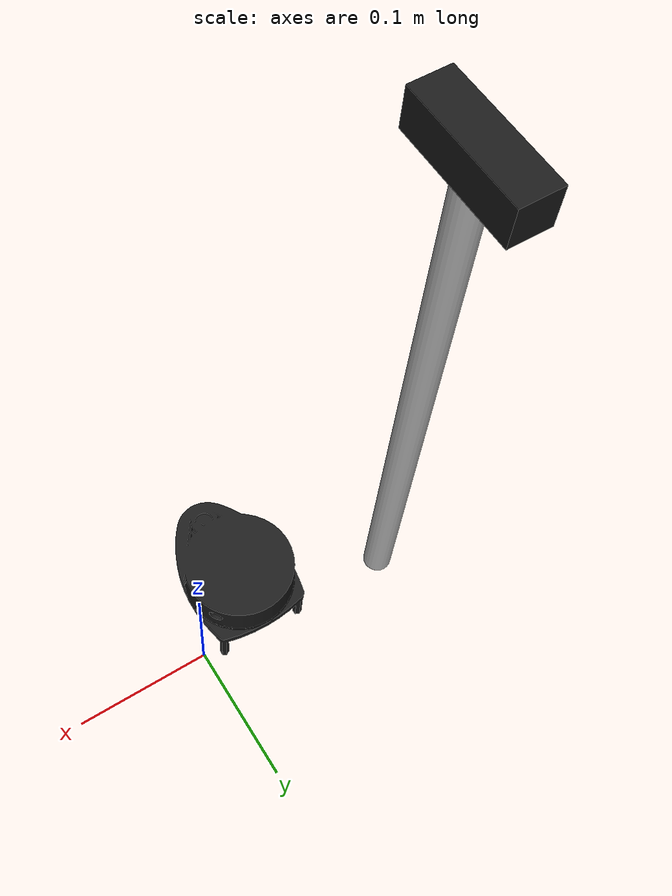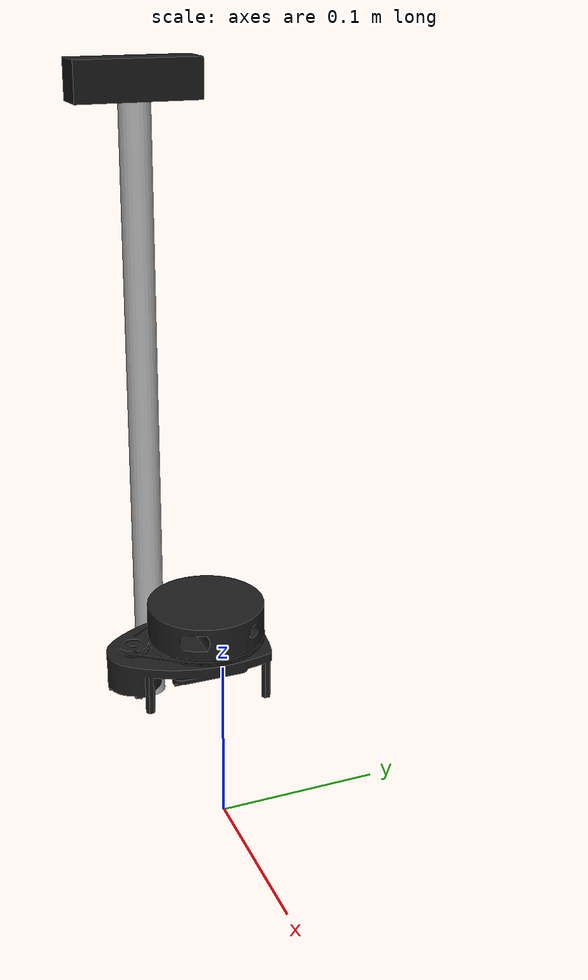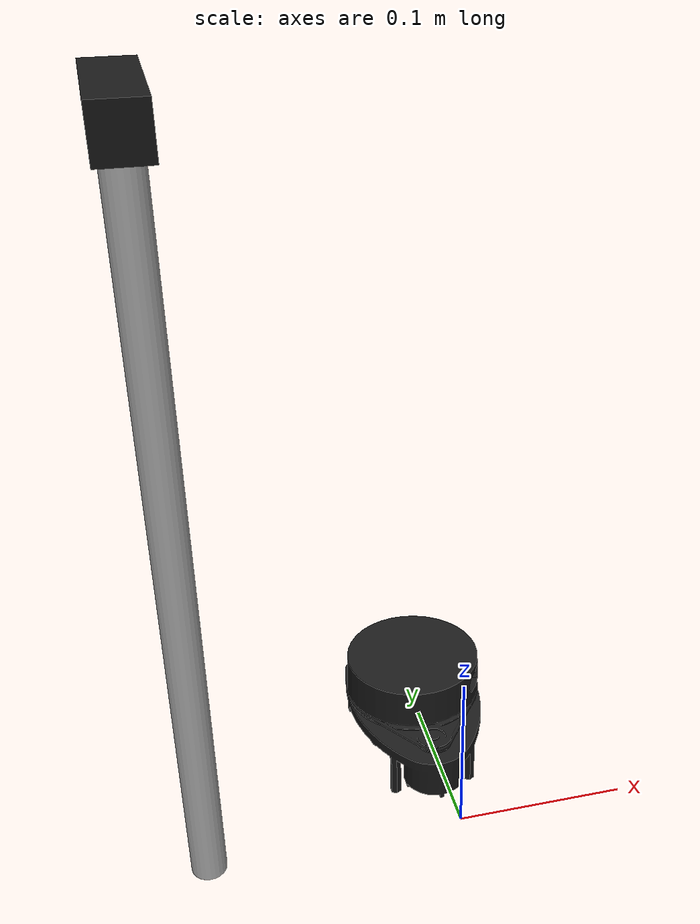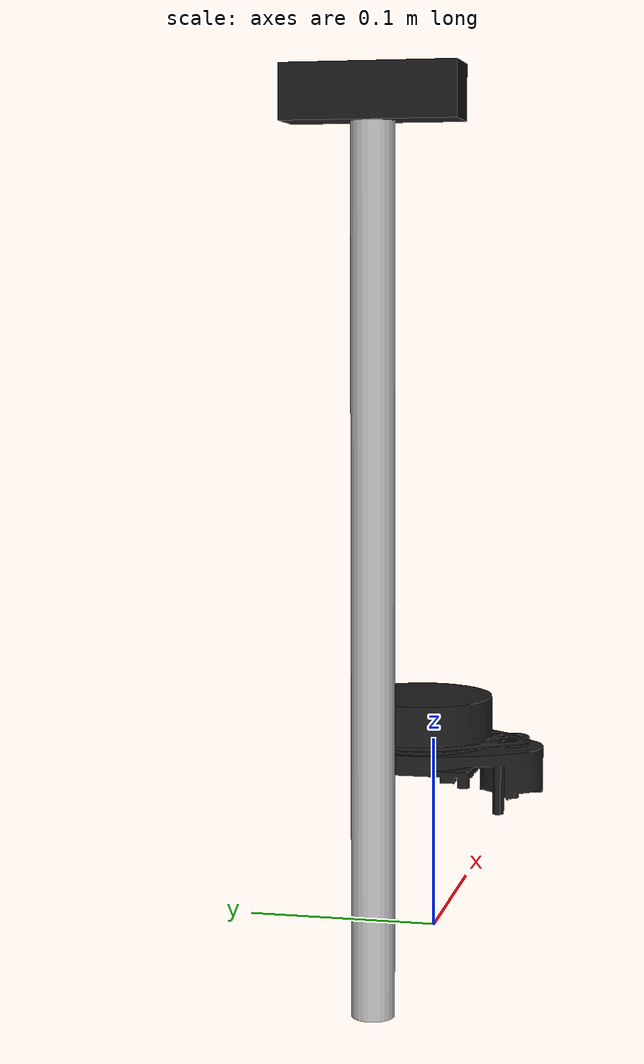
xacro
<?xml version="1.0"?>
<robot xmlns:xacro="http://ros.org/wiki/xacro" name="custom_extras">

  <!-- base_link is a placeholder; Create3's RSP also publishes it -->
  <link name="base_link"/>

  <!-- ===== RPLIDAR ===== -->
  <joint name="rplidar_joint" type="fixed">
    <parent link="base_link"/>
    <child link="rplidar_link"/>
    <origin xyz="-0.03 0.0 0.12" rpy="0 0 -1.5708"/>
  </joint>

  <link name="rplidar_link">
    <visual>
      <geometry>
        <mesh filename="package://turtlebot4_description/meshes/rplidar.dae" scale="1 1 1"/>
      </geometry>
    </visual>
    <collision>
      <geometry>
        <cylinder radius="0.035" length="0.04"/>
      </geometry>
    </collision>
    <inertial>
      <mass value="0.17"/>
      <inertia ixx="0.0001" ixy="0" ixz="0" iyy="0.0001" iyz="0" izz="0.0001"/>
    </inertial>
  </link>

  <!-- ===== Aluminum pole (visual only) ===== -->
  <joint name="pole_joint" type="fixed">
    <parent link="base_link"/>
    <child link="pole_link"/>
    <origin xyz="-0.15 0.0 0.21" rpy="0 0 0"/>
  </joint>

  <link name="pole_link">
    <visual>
      <origin xyz="0 0 0" rpy="0 0 0"/>
      <geometry>
        <cylinder radius="0.01" length="0.42"/>
      </geometry>
      <material name="silver">
        <color rgba="0.75 0.75 0.75 1.0"/>
      </material>
    </visual>
  </link>

  <!-- ===== USB Camera ===== -->
  <joint name="camera_joint" type="fixed">
    <parent link="base_link"/>
    <child link="camera_link"/>
    <origin xyz="-0.15 0.0 0.42" rpy="0 0 0"/>
  </joint>

  <link name="camera_link">
    <visual>
      <geometry>
        <box size="0.025 0.08 0.025"/>
      </geometry>
      <material name="black">
        <color rgba="0.1 0.1 0.1 1.0"/>
      </material>
    </visual>
    <collision>
      <geometry>
        <box size="0.025 0.08 0.025"/>
      </geometry>
    </collision>
    <inertial>
      <mass value="0.05"/>
      <inertia ixx="0.0001" ixy="0" ixz="0" iyy="0.0001" iyz="0" izz="0.0001"/>
    </inertial>
  </link>

  <!-- Camera optical frame (Z forward, X right, Y down — vision convention) -->
  <joint name="camera_optical_joint" type="fixed">
    <parent link="camera_link"/>
    <child link="camera_optical_frame"/>
    <origin xyz="0 0 0" rpy="-1.5708 0 -1.5708"/>
  </joint>

  <link name="camera_optical_frame"/>

</robot>
